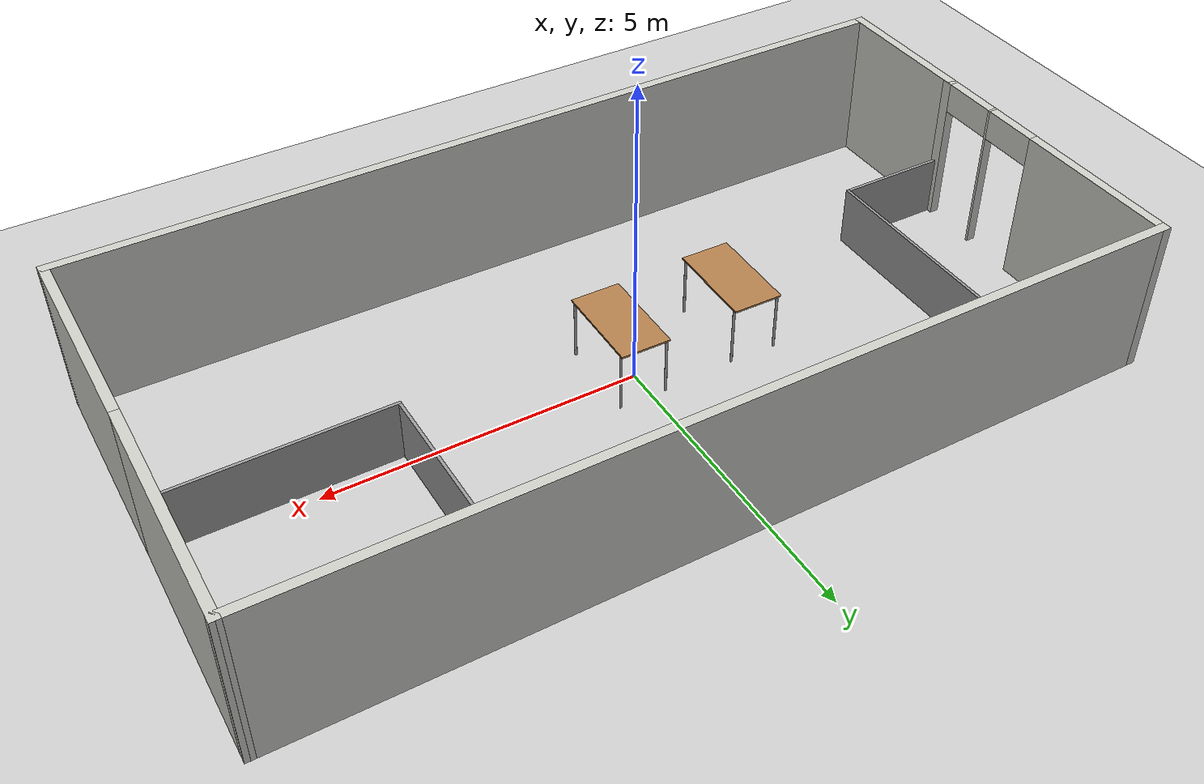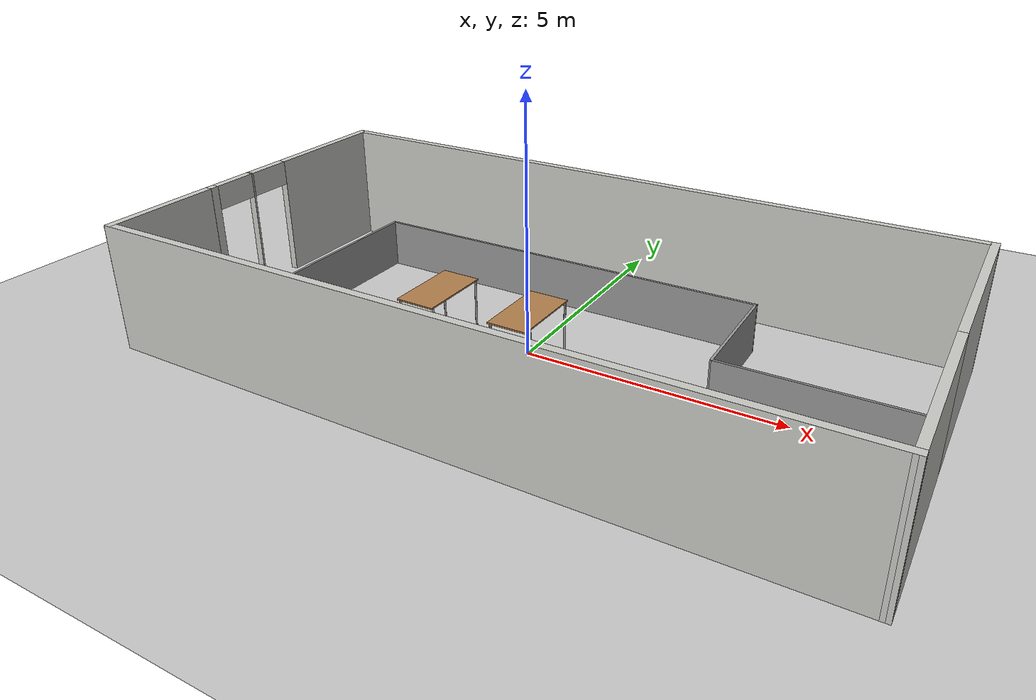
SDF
<sdf version="1.7">
 <world name="default">
  <light name="sun" type="directional">
   <pose>0 0 10 0 -0 0</pose>
   <diffuse>0.8 0.8 0.8 1</diffuse>
   <specular>0.2 0.2 0.2 1</specular>
   <attenuation>
    <range>1000</range>
    <constant>0.9</constant>
    <linear>0.01</linear>
    <quadratic>0.001</quadratic>
   </attenuation>
   <direction>-0.5 0.1 -0.9</direction>
   <spot><inner_angle>0</inner_angle><outer_angle>0</outer_angle><falloff>0</falloff></spot>
  </light>
  <model name="ground_plane">
   <static>1</static>
   <link name="link">
    <collision name="collision">
     <geometry><plane><normal>0 0 1</normal><size>100 100</size></plane></geometry>
     <surface><friction><ode><mu>100</mu><mu2>50</mu2></ode></friction></surface>
    </collision>
    <visual name="visual">
     <cast_shadows>0</cast_shadows>
     <geometry><plane><normal>0 0 1</normal><size>100 100</size></plane></geometry>
     <material>
      <script><uri>file://media/materials/scripts/gazebo.material</uri><name>Gazebo/Grey</name></script>
     </material>
    </visual>
   </link>
  </model>
  <gravity>0 0 -9.8</gravity>
  <magnetic_field>6e-06 2.3e-05 -4.2e-05</magnetic_field>
  <atmosphere type="adiabatic"/>
  <physics type="ode">
   <max_step_size>0.001</max_step_size>
   <real_time_factor>1</real_time_factor>
   <real_time_update_rate>1000</real_time_update_rate>
  </physics>
  <scene><ambient>0.4 0.4 0.4 1</ambient><background>0.7 0.7 0.7 1</background><shadows>1</shadows></scene>
  <spherical_coordinates>
   <surface_model>EARTH_WGS84</surface_model>
   <latitude_deg>0</latitude_deg>
   <longitude_deg>0</longitude_deg>
   <elevation>0</elevation>
   <heading_deg>0</heading_deg>
  </spherical_coordinates>
  <model name="mfi_floor_trial1">
   <pose>0.340049 -0.052723 0 0 -0 0</pose>
   <link name="Wall_10">
    <collision name="Wall_10_Collision">
     <geometry><box><size>1.9 0.05 1</size></box></geometry>
     <pose>0 0 0.5 0 -0 0</pose>
    </collision>
    <visual name="Wall_10_Visual">
     <pose>0 0 0.5 0 -0 0</pose>
     <geometry><box><size>1.9 0.05 1</size></box></geometry>
     <material>
      <script><uri>file://media/materials/scripts/gazebo.material</uri><name>Gazebo/Grey</name></script>
      <ambient>1 1 1 1</ambient>
     </material>
     <meta><layer>0</layer></meta>
    </visual>
    <pose>-6.0041 -1.14431 0 0 -0 3.14159</pose>
   </link>
   <link name="Wall_14">
    <collision name="Wall_14_Collision">
     <geometry><box><size>2.48851 0.15 2.5</size></box></geometry>
     <pose>0 0 1.25 0 -0 0</pose>
    </collision>
    <visual name="Wall_14_Visual">
     <pose>0 0 1.25 0 -0 0</pose>
     <geometry><box><size>2.48851 0.15 2.5</size></box></geometry>
     <material>
      <script><uri>file://media/materials/scripts/gazebo.material</uri><name>Gazebo/CeilingTiled</name></script>
      <ambient>0.729412 0.741176 0.713726 1</ambient>
     </material>
     <meta><layer>0</layer></meta>
    </visual>
    <pose>-6.92509 -2.31381 0 0 -0 -1.56738</pose>
   </link>
   <link name="Wall_16">
    <pose>-6.92809 1.16719 0 0 -0 1.5708</pose>
    <visual name="Wall_16_Visual_0">
     <pose>-2.29327 0 1.25 0 -0 0</pose>
     <geometry><box><size>0.1769 0.15 2.5</size></box></geometry>
     <material>
      <script><uri>file://media/materials/scripts/gazebo.material</uri><name>Gazebo/CeilingTiled</name></script>
      <ambient>0.729412 0.741176 0.713726 1</ambient>
     </material>
     <meta><layer>0</layer></meta>
    </visual>
    <collision name="Wall_16_Collision_0">
     <geometry><box><size>0.1769 0.15 2.5</size></box></geometry>
     <pose>-2.29327 0 1.25 0 -0 0</pose>
    </collision>
    <visual name="Wall_16_Visual_1">
     <pose>-1.28401 0 1.25 0 -0 0</pose>
     <geometry><box><size>0.041629 0.15 2.5</size></box></geometry>
     <material>
      <script><uri>file://media/materials/scripts/gazebo.material</uri><name>Gazebo/CeilingTiled</name></script>
      <ambient>0.729412 0.741176 0.713726 1</ambient>
     </material>
     <meta><layer>0</layer></meta>
    </visual>
    <collision name="Wall_16_Collision_1">
     <geometry><box><size>0.041629 0.15 2.5</size></box></geometry>
     <pose>-1.28401 0 1.25 0 -0 0</pose>
    </collision>
    <visual name="Wall_16_Visual_2">
     <pose>1.00926 0 1.25 0 -0 0</pose>
     <geometry><box><size>2.74491 0.15 2.5</size></box></geometry>
     <material>
      <script><uri>file://media/materials/scripts/gazebo.material</uri><name>Gazebo/CeilingTiled</name></script>
      <ambient>0.729412 0.741176 0.713726 1</ambient>
     </material>
     <meta><layer>0</layer></meta>
    </visual>
    <collision name="Wall_16_Collision_2">
     <geometry><box><size>2.74491 0.15 2.5</size></box></geometry>
     <pose>1.00926 0 1.25 0 -0 0</pose>
    </collision>
    <visual name="Wall_16_Visual_3">
     <pose>-1.75482 0 2.25 0 -0 0</pose>
     <geometry><box><size>0.9 0.15 0.5</size></box></geometry>
     <material>
      <script><uri>file://media/materials/scripts/gazebo.material</uri><name>Gazebo/CeilingTiled</name></script>
      <ambient>0.729412 0.741176 0.713726 1</ambient>
     </material>
     <meta><layer>0</layer></meta>
    </visual>
    <collision name="Wall_16_Collision_3">
     <geometry><box><size>0.9 0.15 0.5</size></box></geometry>
     <pose>-1.75482 0 2.25 0 -0 0</pose>
    </collision>
    <visual name="Wall_16_Visual_4">
     <pose>-0.813192 0 2.25 0 -0 0</pose>
     <geometry><box><size>0.9 0.15 0.5</size></box></geometry>
     <material>
      <script><uri>file://media/materials/scripts/gazebo.material</uri><name>Gazebo/CeilingTiled</name></script>
      <ambient>0.729412 0.741176 0.713726 1</ambient>
     </material>
     <meta><layer>0</layer></meta>
    </visual>
    <collision name="Wall_16_Collision_4">
     <geometry><box><size>0.9 0.15 0.5</size></box></geometry>
     <pose>-0.813192 0 2.25 0 -0 0</pose>
    </collision>
   </link>
   <link name="Wall_20">
    <collision name="Wall_20_Collision">
     <geometry><box><size>13.9871 0.15 2.5</size></box></geometry>
     <pose>0 0 1.25 0 -0 0</pose>
    </collision>
    <visual name="Wall_20_Visual">
     <pose>0 0 1.25 0 -0 0</pose>
     <geometry><box><size>13.9871 0.15 2.5</size></box></geometry>
     <material>
      <script><uri>file://media/materials/scripts/gazebo.material</uri><name>Gazebo/CeilingTiled</name></script>
      <ambient>0.729412 0.741176 0.713726 1</ambient>
     </material>
     <meta><layer>0</layer></meta>
    </visual>
    <pose>-0.009595 3.47869 0 0 -0 0.000723</pose>
   </link>
   <link name="Wall_21">
    <collision name="Wall_21_Collision">
     <geometry><box><size>3.75 0.15 2.5</size></box></geometry>
     <pose>0 0 1.25 0 -0 0</pose>
    </collision>
    <visual name="Wall_21_Visual">
     <pose>0 0 1.25 0 -0 0</pose>
     <geometry><box><size>3.75 0.15 2.5</size></box></geometry>
     <material>
      <script><uri>file://media/materials/scripts/gazebo.material</uri><name>Gazebo/CeilingTiled</name></script>
      <ambient>0.729412 0.741176 0.713726 1</ambient>
     </material>
     <meta><layer>0</layer></meta>
    </visual>
    <pose>6.90891 1.68369 0 0 -0 -1.5708</pose>
   </link>
   <link name="Wall_4">
    <collision name="Wall_4_Collision">
     <geometry><box><size>14 0.15 2.5</size></box></geometry>
     <pose>0 0 1.25 0 -0 0</pose>
    </collision>
    <visual name="Wall_4_Visual">
     <pose>0 0 1.25 0 -0 0</pose>
     <geometry><box><size>14 0.15 2.5</size></box></geometry>
     <material>
      <script><uri>file://media/materials/scripts/gazebo.material</uri><name>Gazebo/CeilingTiled</name></script>
      <ambient>0.729412 0.741176 0.713726 1</ambient>
     </material>
     <meta><layer>0</layer></meta>
    </visual>
    <pose>0.003905 -3.48331 0 0 -0 0</pose>
   </link>
   <link name="Wall_5">
    <collision name="Wall_5_Collision">
     <geometry><box><size>3.51705 0.15 2.5</size></box></geometry>
     <pose>0 0 1.25 0 -0 0</pose>
    </collision>
    <visual name="Wall_5_Visual">
     <pose>0 0 1.25 0 -0 0</pose>
     <geometry><box><size>3.51705 0.15 2.5</size></box></geometry>
     <material>
      <script><uri>file://media/materials/scripts/gazebo.material</uri><name>Gazebo/CeilingTiled</name></script>
      <ambient>0.729412 0.741176 0.713726 1</ambient>
     </material>
     <meta><layer>0</layer></meta>
    </visual>
    <pose>6.9189 -1.79981 0 0 -0 1.57674</pose>
   </link>
   <link name="Wall_6">
    <collision name="Wall_6_Collision">
     <geometry><box><size>3.66511 0.05 1</size></box></geometry>
     <pose>0 0 0.5 0 -0 0</pose>
    </collision>
    <visual name="Wall_6_Visual">
     <pose>0 0 0.5 0 -0 0</pose>
     <geometry><box><size>3.66511 0.05 1</size></box></geometry>
     <material>
      <script><uri>file://media/materials/scripts/gazebo.material</uri><name>Gazebo/Grey</name></script>
      <ambient>1 1 1 1</ambient>
     </material>
     <meta><layer>0</layer></meta>
    </visual>
    <pose>5.10141 -0.130308 0 0 -0 -3.13385</pose>
   </link>
   <link name="Wall_7">
    <collision name="Wall_7_Collision">
     <geometry><box><size>2.38811 0.05 1</size></box></geometry>
     <pose>0 0 0.5 0 -0 0</pose>
    </collision>
    <visual name="Wall_7_Visual">
     <pose>0 0 0.5 0 -0 0</pose>
     <geometry><box><size>2.38811 0.05 1</size></box></geometry>
     <material>
      <script><uri>file://media/materials/scripts/gazebo.material</uri><name>Gazebo/Grey</name></script>
      <ambient>1 1 1 1</ambient>
     </material>
     <meta><layer>0</layer></meta>
    </visual>
    <pose>3.2824 1.02469 0 0 -0 1.58063</pose>
   </link>
   <link name="Wall_8">
    <collision name="Wall_8_Collision">
     <geometry><box><size>8.4 0.05 1</size></box></geometry>
     <pose>0 0 0.5 0 -0 0</pose>
    </collision>
    <visual name="Wall_8_Visual">
     <pose>0 0 0.5 0 -0 0</pose>
     <geometry><box><size>8.4 0.05 1</size></box></geometry>
     <material>
      <script><uri>file://media/materials/scripts/gazebo.material</uri><name>Gazebo/Grey</name></script>
      <ambient>1 1 1 1</ambient>
     </material>
     <meta><layer>0</layer></meta>
    </visual>
    <pose>-0.904095 2.19369 0 0 -0 3.14159</pose>
   </link>
   <link name="Wall_9">
    <collision name="Wall_9_Collision">
     <geometry><box><size>3.388 0.05 1</size></box></geometry>
     <pose>0 0 0.5 0 -0 0</pose>
    </collision>
    <visual name="Wall_9_Visual">
     <pose>0 0 0.5 0 -0 0</pose>
     <geometry><box><size>3.388 0.05 1</size></box></geometry>
     <material>
      <script><uri>file://media/materials/scripts/gazebo.material</uri><name>Gazebo/Grey</name></script>
      <ambient>1 1 1 1</ambient>
     </material>
     <meta><layer>0</layer></meta>
    </visual>
    <pose>-5.07909 0.524692 0 0 -0 -1.5708</pose>
   </link>
   <static>1</static>
  </model>
  <model name="table">
   <static>1</static>
   <link name="link">
    <collision name="surface">
     <pose>0 0 1 0 -0 0</pose>
     <geometry><box><size>1.5 0.8 0.03</size></box></geometry>
     <surface><friction><ode><mu>0.6</mu><mu2>0.6</mu2></ode></friction></surface>
    </collision>
    <visual name="visual1">
     <pose>0 0 1 0 -0 0</pose>
     <geometry><box><size>1.5 0.8 0.03</size></box></geometry>
     <material>
      <script><uri>file://media/materials/scripts/gazebo.material</uri><name>Gazebo/Wood</name></script>
     </material>
    </visual>
    <collision name="front_left_leg">
     <pose>0.68 0.38 0.5 0 -0 0</pose>
     <geometry><cylinder><radius>0.02</radius><length>1</length></cylinder></geometry>
    </collision>
    <visual name="front_left_leg">
     <pose>0.68 0.38 0.5 0 -0 0</pose>
     <geometry><cylinder><radius>0.02</radius><length>1</length></cylinder></geometry>
     <material>
      <script><uri>file://media/materials/scripts/gazebo.material</uri><name>Gazebo/Grey</name></script>
     </material>
    </visual>
    <collision name="front_right_leg">
     <pose>0.68 -0.38 0.5 0 -0 0</pose>
     <geometry><cylinder><radius>0.02</radius><length>1</length></cylinder></geometry>
    </collision>
    <visual name="front_right_leg">
     <pose>0.68 -0.38 0.5 0 -0 0</pose>
     <geometry><cylinder><radius>0.02</radius><length>1</length></cylinder></geometry>
     <material>
      <script><uri>file://media/materials/scripts/gazebo.material</uri><name>Gazebo/Grey</name></script>
     </material>
    </visual>
    <collision name="back_right_leg">
     <pose>-0.68 -0.38 0.5 0 -0 0</pose>
     <geometry><cylinder><radius>0.02</radius><length>1</length></cylinder></geometry>
    </collision>
    <visual name="back_right_leg">
     <pose>-0.68 -0.38 0.5 0 -0 0</pose>
     <geometry><cylinder><radius>0.02</radius><length>1</length></cylinder></geometry>
     <material>
      <script><uri>file://media/materials/scripts/gazebo.material</uri><name>Gazebo/Grey</name></script>
     </material>
    </visual>
    <collision name="back_left_leg">
     <pose>-0.68 0.38 0.5 0 -0 0</pose>
     <geometry><cylinder><radius>0.02</radius><length>1</length></cylinder></geometry>
    </collision>
    <visual name="back_left_leg">
     <pose>-0.68 0.38 0.5 0 -0 0</pose>
     <geometry><cylinder><radius>0.02</radius><length>1</length></cylinder></geometry>
     <material>
      <script><uri>file://media/materials/scripts/gazebo.material</uri><name>Gazebo/Grey</name></script>
     </material>
    </visual>
   </link>
   <pose>-1.82625 -0.247626 0 0 0 -1.58426</pose>
  </model>
  <model name="table_0">
   <static>1</static>
   <link name="link">
    <collision name="surface">
     <pose>0 0 1 0 -0 0</pose>
     <geometry><box><size>1.5 0.8 0.03</size></box></geometry>
     <surface><friction><ode><mu>0.6</mu><mu2>0.6</mu2></ode></friction></surface>
    </collision>
    <visual name="visual1">
     <pose>0 0 1 0 -0 0</pose>
     <geometry><box><size>1.5 0.8 0.03</size></box></geometry>
     <material>
      <script><uri>file://media/materials/scripts/gazebo.material</uri><name>Gazebo/Wood</name></script>
     </material>
    </visual>
    <collision name="front_left_leg">
     <pose>0.68 0.38 0.5 0 -0 0</pose>
     <geometry><cylinder><radius>0.02</radius><length>1</length></cylinder></geometry>
    </collision>
    <visual name="front_left_leg">
     <pose>0.68 0.38 0.5 0 -0 0</pose>
     <geometry><cylinder><radius>0.02</radius><length>1</length></cylinder></geometry>
     <material>
      <script><uri>file://media/materials/scripts/gazebo.material</uri><name>Gazebo/Grey</name></script>
     </material>
    </visual>
    <collision name="front_right_leg">
     <pose>0.68 -0.38 0.5 0 -0 0</pose>
     <geometry><cylinder><radius>0.02</radius><length>1</length></cylinder></geometry>
    </collision>
    <visual name="front_right_leg">
     <pose>0.68 -0.38 0.5 0 -0 0</pose>
     <geometry><cylinder><radius>0.02</radius><length>1</length></cylinder></geometry>
     <material>
      <script><uri>file://media/materials/scripts/gazebo.material</uri><name>Gazebo/Grey</name></script>
     </material>
    </visual>
    <collision name="back_right_leg">
     <pose>-0.68 -0.38 0.5 0 -0 0</pose>
     <geometry><cylinder><radius>0.02</radius><length>1</length></cylinder></geometry>
    </collision>
    <visual name="back_right_leg">
     <pose>-0.68 -0.38 0.5 0 -0 0</pose>
     <geometry><cylinder><radius>0.02</radius><length>1</length></cylinder></geometry>
     <material>
      <script><uri>file://media/materials/scripts/gazebo.material</uri><name>Gazebo/Grey</name></script>
     </material>
    </visual>
    <collision name="back_left_leg">
     <pose>-0.68 0.38 0.5 0 -0 0</pose>
     <geometry><cylinder><radius>0.02</radius><length>1</length></cylinder></geometry>
    </collision>
    <visual name="back_left_leg">
     <pose>-0.68 0.38 0.5 0 -0 0</pose>
     <geometry><cylinder><radius>0.02</radius><length>1</length></cylinder></geometry>
     <material>
      <script><uri>file://media/materials/scripts/gazebo.material</uri><name>Gazebo/Grey</name></script>
     </material>
    </visual>
   </link>
   <pose>0.133748 -0.204356 0 0 0 -1.57918</pose>
  </model>
 </world>
</sdf>
